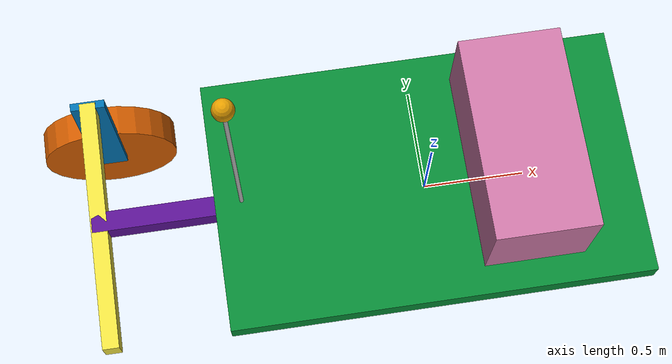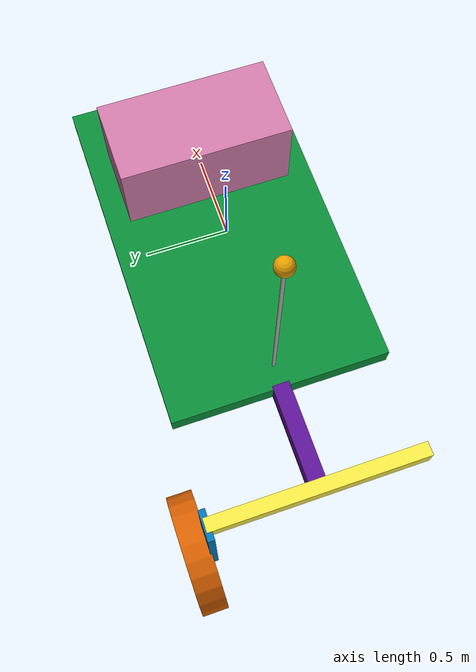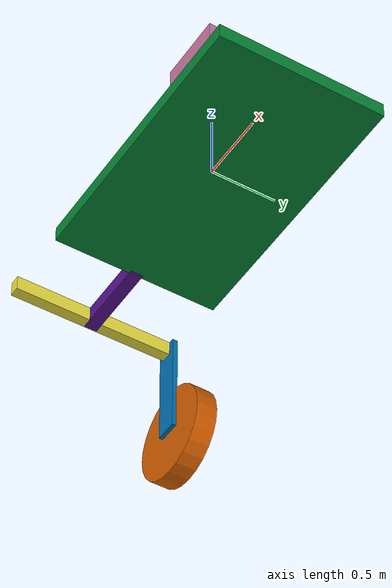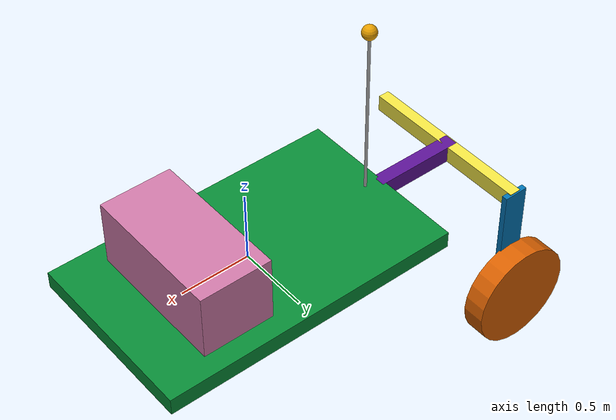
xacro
<?xml version="1.0"?>
<robot xmlns:xacro="http://www.ros.org/wiki/xacro" name="my_robot">

  <!-- ========== MATERIALS ========== -->
  <material name="blue">
    <color rgba="0.027 0.539 0.209 1"/>
  </material>
  <material name="red">
    <color rgba="0.352 0.070 0.578 1"/>
  </material>
  <!-- Добавьте другие материалы по аналогии -->

  <!-- ========== MACROS ========== -->
  <xacro:macro name="box_inertial" params="mass x y z">
    <inertial>
      <mass value="${mass}"/>
      <inertia ixx="${0.083 * mass * (y*y + z*z)}" ixy="0" ixz="0"
               iyy="${0.083 * mass * (x*x + z*z)}" iyz="0"
               izz="${0.083 * mass * (x*x + y*y)}"/>
    </inertial>
  </xacro:macro>

  <xacro:macro name="cylinder_inertial" params="mass r h">
    <inertial>
      <mass value="${mass}"/>
      <inertia ixx="${mass*(3*r*r + h*h)/12}" ixy="0" ixz="0"
               iyy="${mass*(3*r*r + h*h)/12}" iyz="0"
               izz="${mass*r*r/2}"/>
    </inertial>
  </xacro:macro>

  <!-- ========== BASE LINK ========== -->
  <link name="fito_world"/>

  <joint name="base_joint" type="fixed">
    <parent link="fito_world"/>
    <child link="base_link"/>
    <origin xyz="0 0.033 0" rpy="0 0 0"/>
  </joint>

  <link name="base_link">
    <visual>
      <geometry>
        <box size="2.11 1.28 0.12"/>
      </geometry>
      <material name="blue"/>
    </visual>
    <collision>
      <geometry>
        <box size="2.11 1.28 0.12"/>
      </geometry>
    </collision>
    <xacro:box_inertial mass="400" x="2.11" y="1.28" z="0.12"/>
  </link>

  <!-- ========== STEERING MECHANISM ========== -->
  <joint name="base_link_to_wheeling_mech" type="revolute">
    <parent link="base_link"/>
    <child link="wheeling_mech"/>
    <origin xyz="-1.051 0 0" rpy="0 0 0"/>
    <axis xyz="0 0 1"/>
    <limit effort="1000.0" lower="-0.4" upper="0.4" velocity="0.5"/>
  </joint>

  <link name="wheeling_mech">
    <visual>
      <origin xyz="-0.3 0 0" rpy="0 0 0"/>
      <geometry>
        <box size="0.64 0.1 0.12"/>
      </geometry>
      <material name="red"/>
    </visual>
    <collision>
      <origin xyz="-0.3 0 0" rpy="0 0 0"/>
      <geometry>
        <box size="0.64 0.1 0.12"/>
      </geometry>
    </collision>
    <xacro:box_inertial mass="50" x="0.64" y="0.1" z="0.12"/>
  </link>

  <!-- ========== FRONT WHEELS ASSEMBLY ========== -->
  <joint name="wheeling_mech_to_front_wheels_base" type="fixed">
    <parent link="wheeling_mech"/>
    <child link="front_wheels_base"/>
    <origin xyz="-0.585 0 0" rpy="0 0 0"/>
  </joint>

  <link name="front_wheels_base">
    <visual>
      <geometry>
        <box size="0.082 1.28 0.12"/>
      </geometry>
    </visual>
    <collision>
      <geometry>
        <box size="0.082 1.28 0.12"/>
      </geometry>
    </collision>
    <xacro:box_inertial mass="50" x="0.082" y="1.28" z="0.12"/>
  </link>

  <!-- ========== FRONT RIGHT WHEEL ========== -->
  <joint name="front_wheels_base_to_front_right_base" type="fixed">
    <parent link="front_wheels_base"/>
    <child link="front_right_base"/>
    <origin xyz="0 0.63 -0.36" rpy="0 0 0"/>
  </joint>

  <link name="front_right_base">
    <visual>
      <geometry>
        <box size="0.175 0.04 0.83"/>
      </geometry>
    </visual>
    <collision>
      <geometry>
        <box size="0.175 0.04 0.83"/>
      </geometry>
    </collision>
    <xacro:box_inertial mass="15" x="0.175" y="0.04" z="0.83"/>
  </link>

  <joint name="front_right_base_to_front_right_wheel" type="continuous">
    <parent link="front_right_base"/>
    <child link="front_right_wheel"/>
    <origin xyz="0 0.09 -0.41" rpy="${pi/2} 0 0"/>
    <axis xyz="0 0 1"/>
  </joint>

  <link name="front_right_wheel">
    <visual>
      <geometry>
        <cylinder radius="0.37" length="0.16"/>
      </geometry>
    </visual>
    <collision>
      <geometry>
        <cylinder radius="0.37" length="0.16"/>
      </geometry>
    </collision>
    <xacro:cylinder_inertial mass="60" r="0.37" h="0.16"/>
  </link>

  <!-- ========== FRONT LEFT WHEEL (аналогично правому) ========== -->
  <!-- Добавьте по аналогии с front_right -->

  <!-- ========== REAR WHEELS ========== -->
  <!-- Добавьте задние колеса по аналогии с передними -->

  <!-- ========== LOADS ========== -->
  <joint name="base_link_to_back_load" type="fixed">
    <parent link="base_link"/>
    <child link="back_load"/>
    <origin xyz="0.466 0 0.275" rpy="0 0 0"/>
  </joint>

  <link name="back_load">
    <visual>
      <geometry>
        <box size="0.5 1 0.5"/>
      </geometry>
    </visual>
    <collision>
      <geometry>
        <box size="0.5 1 0.5"/>
      </geometry>
    </collision>
    <xacro:box_inertial mass="50" x="0.5" y="1" z="0.5"/>
  </link>

  <!-- ========== LIDAR ========== -->
  <joint name="base_link_to_lidar_base" type="fixed">
    <parent link="base_link"/>
    <child link="lidar_base"/>
    <origin xyz="-0.92 0.002 0.681" rpy="0 0 0"/>
  </joint>

  <link name="lidar_base">
    <visual>
      <geometry>
        <cylinder radius="0.01" length="1.2"/>
      </geometry>
    </visual>
    <collision>
      <geometry>
        <cylinder radius="0.01" length="1.2"/>
      </geometry>
    </collision>
    <xacro:cylinder_inertial mass="1" r="0.01" h="1.2"/>
  </link>

  <joint name="lidar_base_to_lidar" type="fixed">
    <parent link="lidar_base"/>
    <child link="lidar"/>
    <origin xyz="0 0 0.617" rpy="0 0 0"/>
  </joint>

  <link name="lidar">
    <visual>
      <geometry>
        <sphere radius="0.05"/>
      </geometry>
    </visual>
    <collision>
      <geometry>
        <sphere radius="0.05"/>
      </geometry>
    </collision>
    <inertial>
      <mass value="1"/>
      <inertia ixx="0.4" ixy="0" ixz="0" iyy="0.4" iyz="0" izz="0.4"/>
    </inertial>

  </link>

  <!-- ========== ROS2 CONTROL ========== -->
    <ros2_control name="GazeboSystem" type="system">
      <hardware>
        <plugin>gz_ros2_control/GazeboSimSystem</plugin>
      </hardware>

      <joint name="back_right_base_to_back_right_wheel">
        <command_interface name="velocity">
          <param name="min">-10</param>
          <param name="max">10</param>
        </command_interface>
        <state_interface name="position"/>
        <state_interface name="velocity"/>
      </joint>

      <joint name="back_left_base_to_back_left_wheel">
        <command_interface name="velocity">
          <param name="min">-10</param>
          <param name="max">10</param>
        </command_interface>
        <state_interface name="position"/>
        <state_interface name="velocity"/>
      </joint>

      <joint name="front_right_base_to_front_right_wheel">
        <command_interface name="velocity">
          <param name="min">-10</param>
          <param name="max">10</param>
        </command_interface>
        <state_interface name="position"/>
        <state_interface name="velocity"/>
      </joint>

      <joint name="front_left_base_to_front_left_wheel">
        <command_interface name="velocity">
          <param name="min">-10</param>
          <param name="max">10</param>
        </command_interface>
        <state_interface name="position"/>
        <state_interface name="velocity"/>
      </joint>

      <!-- Steering mechanisms (position control) -->
      <joint name="base_link_to_wheeling_mech">
        <command_interface name="position">
          <param name="min">-0.4</param>
          <param name="max">0.4</param>
        </command_interface>
        <state_interface name="position"/>
        <state_interface name="velocity"/>
      </joint>

    </ros2_control>

    <gazebo>
      <plugin name="gz_ros2_control::GazeboSimROS2ControlPlugin" filename="libgz_ros2_control-system.so">
        <parameters>$(find my_robot)/config/new_controllers.yaml</parameters>
      </plugin>

    </gazebo>

    <gazebo reference="base_link">
      <material>Gazebo/Grey</material>
    </gazebo>
</robot>
